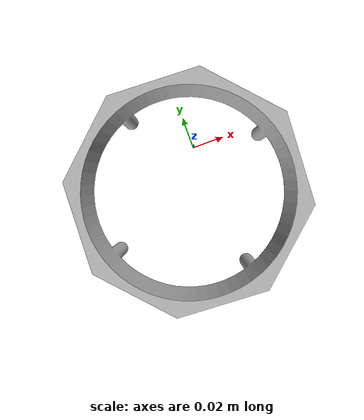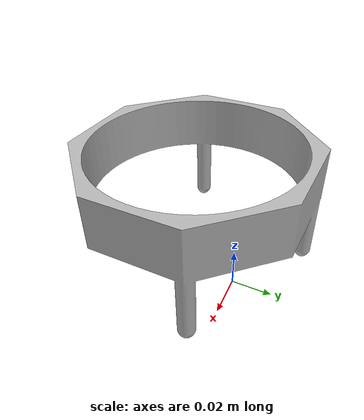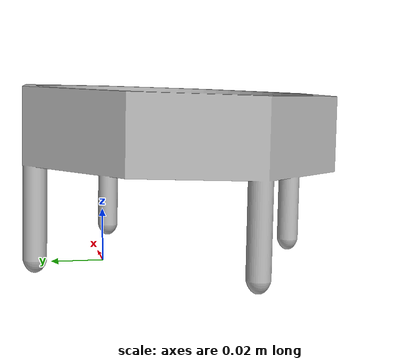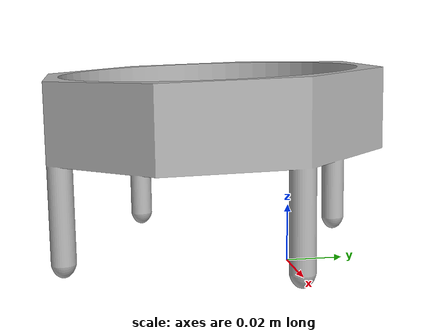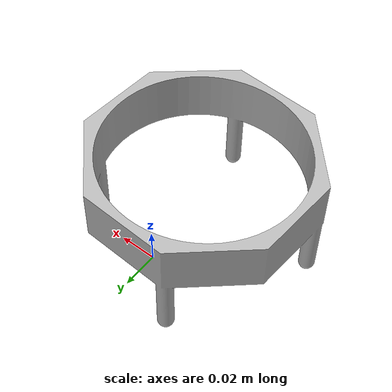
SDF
<?xml version='1.0'?>
<sdf version='1.6'>
  <model name='4T'>
        <link name='mountlink1'>
          <collision name='coll'>
            <pose frame=''>0 0 0 0 -0 0</pose>
            <geometry>
              <mesh>
                <uri>model://mount/meshes/mount.dae</uri>
              </mesh>
            </geometry>
          </collision>
          <inertial>
            <pose frame=''>0 0 0 0 -0 0</pose>
            <inertia>
				  <ixx>0.00055873</ixx>
				  <ixy>0.0000</ixy>
				  <ixz>0.00000</ixz>
				  <iyy>0.00055873</iyy>
				  <iyz>0.00000/iyz></iyz>
				  <izz>0.0010789</izz>
            </inertia>
            <mass>0.028</mass>
          </inertial>
          <visual name='mountvisual'>
            <pose frame=''>0 0 0 0 -0 0</pose>
            <geometry>
              <mesh>
                <uri>model://mount/meshes/mount.dae</uri>
              </mesh>
            </geometry>
          </visual>
        </link>
        <pose frame=''>-0.012243 -0.025526 0 0 -0 0</pose>
        <link name='mountlink2'>
          <collision name='coll'>
            <pose frame=''>0 0 0 0 -0 0</pose>
            <geometry>
              <mesh>
                <uri>model://mount/meshes/mount.dae</uri>
              </mesh>
            </geometry>
          </collision>
          <inertial>
            <pose frame=''>0 0 0 0 -0 0</pose>
            <inertia>
				  <ixx>0.00055873</ixx>
				  <ixy>0.0000</ixy>
				  <ixz>0.00000</ixz>
				  <iyy>0.00055873</iyy>
				  <iyz>0.00000/iyz></iyz>
				  <izz>0.0010789</izz>
            </inertia>
            <mass>0.028</mass>
          </inertial>
          <visual name='mountvisual'>
            <pose frame=''>0 0 0 0 -0 0</pose>
            <geometry>
              <mesh>
                <uri>model://mount/meshes/mount.dae</uri>
              </mesh>
            </geometry>
          </visual>
        </link>
        <pose frame=''>0.03438 0.076098 0 0 -0 0</pose>
        <link name='mountlink3'>
          <collision name='coll'>
            <pose frame=''>0 0 0 0 -0 0</pose>
            <geometry>
              <mesh>
                <uri>model://mount/meshes/mount.dae</uri>
              </mesh>
            </geometry>
          </collision>
          <inertial>
            <pose frame=''>0 0 0 0 -0 0</pose>
            <inertia>
				  <ixx>0.00055873</ixx>
				  <ixy>0.0000</ixy>
				  <ixz>0.00000</ixz>
				  <iyy>0.00055873</iyy>
				  <iyz>0.00000/iyz></iyz>
				  <izz>0.0010789</izz>
            </inertia>
            <mass>0.028</mass>
          </inertial>
          <visual name='mountvisual'>
            <pose frame=''>0 0 0 0 -0 0</pose>
            <geometry>
              <mesh>
                <uri>model://mount/meshes/mount.dae</uri>
              </mesh>
            </geometry>
          </visual>
        </link>
        <pose frame=''>-0.110867 0.022535 0 0 -0 0</pose>
        <link name='mountlink4'>
          <collision name='coll'>
            <pose frame=''>0 0 0 0 -0 0</pose>
            <geometry>
              <mesh>
                <uri>model://mount/meshes/mount.dae</uri>
              </mesh>
            </geometry>
          </collision>
          <inertial>
            <pose frame=''>0 0 0 0 -0 0</pose>
            <inertia>
				  <ixx>0.00055873</ixx>
				  <ixy>0.0000</ixy>
				  <ixz>0.00000</ixz>
				  <iyy>0.00055873</iyy>
				  <iyz>0.00000/iyz></iyz>
				  <izz>0.0010789</izz>
            </inertia>
            <mass>0.028</mass>
          </inertial>
          <visual name='mountvisual'>
            <pose frame=''>0 0 0 0 -0 0</pose>
            <geometry>
              <mesh>
                <uri>model://mount/meshes/mount.dae</uri>
              </mesh>
            </geometry>
          </visual>
        </link>
        <pose frame=''>0.08873 -0.073107 0 0 -0 0</pose>
      <static>0</static>
      <allow_auto_disable>1</allow_auto_disable>
      <pose frame=''>0 0 0 0 -0 0</pose>
    <joint name='mountlink_JOINT_1' type='revolute'>
      <parent>mountlink1</parent>
      <child>mountlink2</child>
      <pose frame=''>0 0 0 0 -0 0</pose>
      <axis>
        <xyz>1 0 0</xyz>
        <use_parent_model_frame>0</use_parent_model_frame>
        <limit>
          <lower>-1.79769e+308</lower>
          <upper>1.79769e+308</upper>
          <effort>-1</effort>
          <velocity>-1</velocity>
        </limit>
        <dynamics>
          <spring_reference>0</spring_reference>
          <spring_stiffness>0</spring_stiffness>
          <damping>0</damping>
        </dynamics>
      </axis>
      <physics>
        <ode>
          <limit>
            <cfm>0</cfm>
            <erp>0.2</erp>
          </limit>
          <suspension>
            <cfm>0</cfm>
            <erp>0.2</erp>
          </suspension>
        </ode>
      </physics>
    </joint>
    <joint name='mountlink_JOINT_2' type='revolute'>
      <parent>mountlink1</parent>
      <child>mountlink3</child>
      <pose frame=''>0 0 0 0 -0 0</pose>
      <axis>
        <xyz>1 0 0</xyz>
        <use_parent_model_frame>0</use_parent_model_frame>
        <limit>
          <lower>-1.79769e+308</lower>
          <upper>1.79769e+308</upper>
          <effort>-1</effort>
          <velocity>-1</velocity>
        </limit>
        <dynamics>
          <spring_reference>0</spring_reference>
          <spring_stiffness>0</spring_stiffness>
          <damping>0</damping>
        </dynamics>
      </axis>
      <physics>
        <ode>
          <limit>
            <cfm>0</cfm>
            <erp>0.2</erp>
          </limit>
          <suspension>
            <cfm>0</cfm>
            <erp>0.2</erp>
          </suspension>
        </ode>
      </physics>
    </joint>
    <joint name='mountlink_JOINT_0' type='fixed'>
      <parent>mountlink4</parent>
      <child>mountlink1</child>
      <pose frame=''>0 0 0 0 -0 0</pose>
      <physics>
        <ode>
          <limit>
            <cfm>0</cfm>
            <erp>0.2</erp>
          </limit>
          <suspension>
            <cfm>0</cfm>
            <erp>0.2</erp>
          </suspension>
        </ode>
      </physics>
    </joint>
    <static>0</static>
    <allow_auto_disable>1</allow_auto_disable>
  </model>
</sdf>
